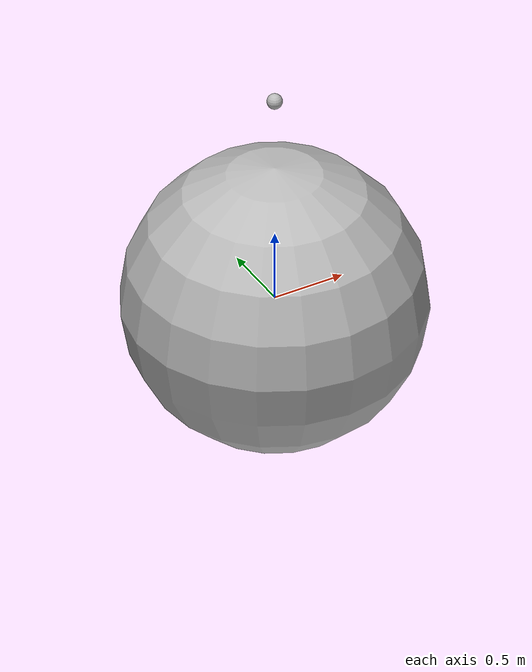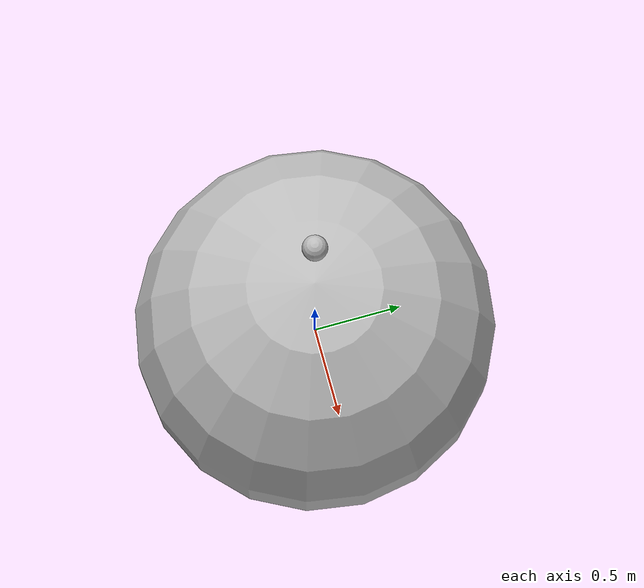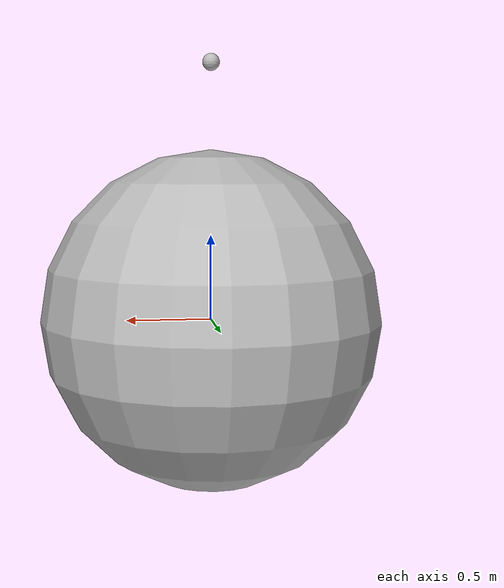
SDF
<?xml version='1.0'?>
<sdf version='1.4'>
    <model name="robo1">
    <static>true</static>
    <link name='l1'>
        <pose>0 0 0 0 0 0</pose>

        <collision name='collision'>
            <geometry>
                <ellipsoid>
                <size>2 3 2</size>
                </ellipsoid>
            </geometry>
        </collision>

        <visual name='visual'>
            <geometry>
                <ellipsoid>
                <size>2 3 2</size>
                </ellipsoid>
            </geometry>
        </visual>
    <collision name ='spherecol'>
        <pose>0 0 1.5 0 0 0</pose>
        <geometry>
            <sphere>
                <radius>.05</radius>
              </sphere>
            </geometry>

            <surface>
              <friction>
                <ode>
                  <mu>0</mu>
                  <mu2>0</mu2>
                  <slip1>1.0</slip1>
                  <slip2>1.0</slip2>
                </ode>
              </friction>
            </surface>
          </collision>

          <visual name='caster_visual'>
            <pose>0 0 1.5 0 0 0</pose>
            <geometry>
              <sphere>
                <radius>.05</radius>
              </sphere>
            </geometry>
          </visual>
        </link>
    </model>
</sdf>
